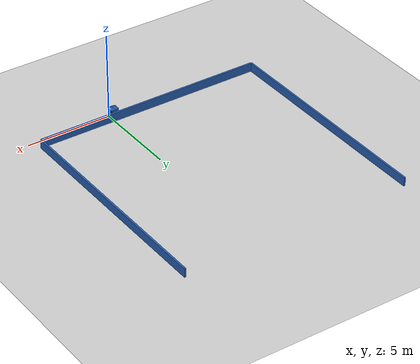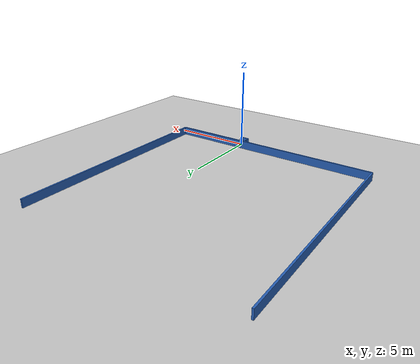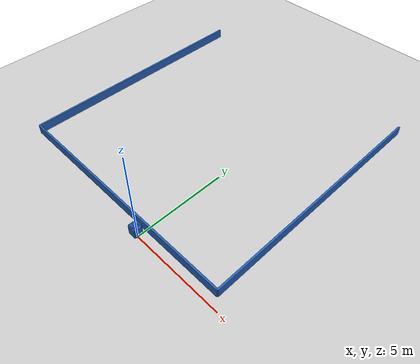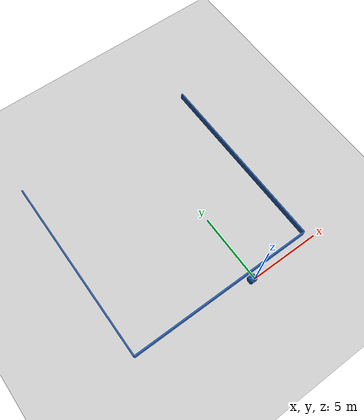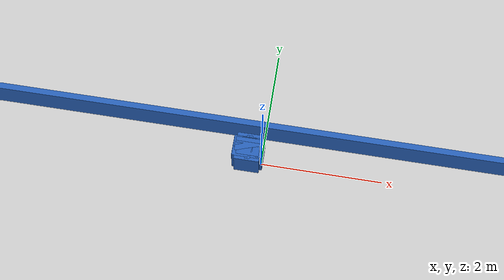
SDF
<?xml version="1.0" ?>
    <sdf version="1.5">
      <world name="default">
        <!-- A global light source -->
        <include>
          <uri>model://sun</uri>
        </include>
        <!-- A ground plane -->
        <include>
          <uri>model://ground_plane</uri>
        </include>

    <model name='libopen_space_final_T2B_115_16'>
      <static>1</static>
      <pose frame=''>-0.225000 0.075000 0.000000 0.000000 0.000000 0.000000</pose>
      <link name='link'>
        <inertial>
          <mass>1</mass>
          <inertia>
            <ixx>0.145833</ixx>
            <ixy>0</ixy>
            <ixz>0</ixz>
            <iyy>0.145833</iyy>
            <iyz>0</iyz>
            <izz>0.125</izz>
          </inertia>
        </inertial>
        <collision name='collision'>
          <geometry>
            <box>
              <size>0.50 0.34 1</size>
            </box>
          </geometry>
          <max_contacts>10</max_contacts>
          <surface>
            <contact>
              <ode/>
            </contact>
            <bounce/>
            <friction>
              <torsional>
                <ode/>
              </torsional>
              <ode/>
            </friction>
          </surface>
        </collision>
        <visual name='visual'>
          <geometry>
            <box>
              <size>0.50 0.34 1</size>
            </box>
          </geometry>
	    <material>
              <ambient>0.152000 0.379000 0.720000 1</ambient>
	      <diffuse>0.152000 0.379000 0.720000 1</diffuse>
          </material>
          <material>
            <script>
              <name>Gazebo/Grey</name>
              <uri>file://media/materials/scripts/gazebo.material</uri>
            </script>
          </material>
        </visual>
        <self_collide>0</self_collide>
        <kinematic>0</kinematic>
        <gravity>1</gravity>
      </link>
      <plugin name='libopen_space_final_T2B_115_16' filename='libopen_space_final_T2B_115_16.so'/>
    </model>

    <model name='libopen_space_final_T2B_109_60'>
      <static>1</static>
      <pose frame=''>-0.225000 0.075000 0.000000 0.000000 0.000000 0.000000</pose>
      <link name='link'>
        <inertial>
          <mass>1</mass>
          <inertia>
            <ixx>0.145833</ixx>
            <ixy>0</ixy>
            <ixz>0</ixz>
            <iyy>0.145833</iyy>
            <iyz>0</iyz>
            <izz>0.125</izz>
          </inertia>
        </inertial>
        <collision name='collision'>
          <geometry>
            <box>
              <size>0.49 0.35 1</size>
            </box>
          </geometry>
          <max_contacts>10</max_contacts>
          <surface>
            <contact>
              <ode/>
            </contact>
            <bounce/>
            <friction>
              <torsional>
                <ode/>
              </torsional>
              <ode/>
            </friction>
          </surface>
        </collision>
        <visual name='visual'>
          <geometry>
            <box>
              <size>0.49 0.35 1</size>
            </box>
          </geometry>
	    <material>
              <ambient>0.152000 0.379000 0.720000 1</ambient>
	      <diffuse>0.152000 0.379000 0.720000 1</diffuse>
          </material>
          <material>
            <script>
              <name>Gazebo/Grey</name>
              <uri>file://media/materials/scripts/gazebo.material</uri>
            </script>
          </material>
        </visual>
        <self_collide>0</self_collide>
        <kinematic>0</kinematic>
        <gravity>1</gravity>
      </link>
      <plugin name='libopen_space_final_T2B_109_60' filename='libopen_space_final_T2B_109_60.so'/>
    </model>

    <model name='libopen_space_final_T2B_129_11'>
      <static>1</static>
      <pose frame=''>-0.225000 0.075000 0.000000 0.000000 0.000000 0.000000</pose>
      <link name='link'>
        <inertial>
          <mass>1</mass>
          <inertia>
            <ixx>0.145833</ixx>
            <ixy>0</ixy>
            <ixz>0</ixz>
            <iyy>0.145833</iyy>
            <iyz>0</iyz>
            <izz>0.125</izz>
          </inertia>
        </inertial>
        <collision name='collision'>
          <geometry>
            <box>
              <size>0.41 0.46 1</size>
            </box>
          </geometry>
          <max_contacts>10</max_contacts>
          <surface>
            <contact>
              <ode/>
            </contact>
            <bounce/>
            <friction>
              <torsional>
                <ode/>
              </torsional>
              <ode/>
            </friction>
          </surface>
        </collision>
        <visual name='visual'>
          <geometry>
            <box>
              <size>0.41 0.46 1</size>
            </box>
          </geometry>
	    <material>
              <ambient>0.152000 0.379000 0.720000 1</ambient>
	      <diffuse>0.152000 0.379000 0.720000 1</diffuse>
          </material>
          <material>
            <script>
              <name>Gazebo/Grey</name>
              <uri>file://media/materials/scripts/gazebo.material</uri>
            </script>
          </material>
        </visual>
        <self_collide>0</self_collide>
        <kinematic>0</kinematic>
        <gravity>1</gravity>
      </link>
      <plugin name='libopen_space_final_T2B_129_11' filename='libopen_space_final_T2B_129_11.so'/>
    </model>

    <model name='libopen_space_final_T2B_77_58'>
      <static>1</static>
      <pose frame=''>-0.225000 0.075000 0.000000 0.000000 0.000000 0.000000</pose>
      <link name='link'>
        <inertial>
          <mass>1</mass>
          <inertia>
            <ixx>0.145833</ixx>
            <ixy>0</ixy>
            <ixz>0</ixz>
            <iyy>0.145833</iyy>
            <iyz>0</iyz>
            <izz>0.125</izz>
          </inertia>
        </inertial>
        <collision name='collision'>
          <geometry>
            <box>
              <size>0.14 0.16 1</size>
            </box>
          </geometry>
          <max_contacts>10</max_contacts>
          <surface>
            <contact>
              <ode/>
            </contact>
            <bounce/>
            <friction>
              <torsional>
                <ode/>
              </torsional>
              <ode/>
            </friction>
          </surface>
        </collision>
        <visual name='visual'>
          <geometry>
            <box>
              <size>0.14 0.16 1</size>
            </box>
          </geometry>
	    <material>
              <ambient>0.152000 0.379000 0.720000 1</ambient>
	      <diffuse>0.152000 0.379000 0.720000 1</diffuse>
          </material>
          <material>
            <script>
              <name>Gazebo/Grey</name>
              <uri>file://media/materials/scripts/gazebo.material</uri>
            </script>
          </material>
        </visual>
        <self_collide>0</self_collide>
        <kinematic>0</kinematic>
        <gravity>1</gravity>
      </link>
      <plugin name='libopen_space_final_T2B_77_58' filename='libopen_space_final_T2B_77_58.so'/>
    </model>

    <model name='libopen_space_final_T2B_77_65'>
      <static>1</static>
      <pose frame=''>-0.225000 0.075000 0.000000 0.000000 0.000000 0.000000</pose>
      <link name='link'>
        <inertial>
          <mass>1</mass>
          <inertia>
            <ixx>0.145833</ixx>
            <ixy>0</ixy>
            <ixz>0</ixz>
            <iyy>0.145833</iyy>
            <iyz>0</iyz>
            <izz>0.125</izz>
          </inertia>
        </inertial>
        <collision name='collision'>
          <geometry>
            <box>
              <size>0.37 0.28 1</size>
            </box>
          </geometry>
          <max_contacts>10</max_contacts>
          <surface>
            <contact>
              <ode/>
            </contact>
            <bounce/>
            <friction>
              <torsional>
                <ode/>
              </torsional>
              <ode/>
            </friction>
          </surface>
        </collision>
        <visual name='visual'>
          <geometry>
            <box>
              <size>0.37 0.28 1</size>
            </box>
          </geometry>
	    <material>
              <ambient>0.152000 0.379000 0.720000 1</ambient>
	      <diffuse>0.152000 0.379000 0.720000 1</diffuse>
          </material>
          <material>
            <script>
              <name>Gazebo/Grey</name>
              <uri>file://media/materials/scripts/gazebo.material</uri>
            </script>
          </material>
        </visual>
        <self_collide>0</self_collide>
        <kinematic>0</kinematic>
        <gravity>1</gravity>
      </link>
      <plugin name='libopen_space_final_T2B_77_65' filename='libopen_space_final_T2B_77_65.so'/>
    </model>

    <model name='libopen_space_final_T2B_96_0'>
      <static>1</static>
      <pose frame=''>-0.225000 0.075000 0.000000 0.000000 0.000000 0.000000</pose>
      <link name='link'>
        <inertial>
          <mass>1</mass>
          <inertia>
            <ixx>0.145833</ixx>
            <ixy>0</ixy>
            <ixz>0</ixz>
            <iyy>0.145833</iyy>
            <iyz>0</iyz>
            <izz>0.125</izz>
          </inertia>
        </inertial>
        <collision name='collision'>
          <geometry>
            <box>
              <size>0.43 0.31 1</size>
            </box>
          </geometry>
          <max_contacts>10</max_contacts>
          <surface>
            <contact>
              <ode/>
            </contact>
            <bounce/>
            <friction>
              <torsional>
                <ode/>
              </torsional>
              <ode/>
            </friction>
          </surface>
        </collision>
        <visual name='visual'>
          <geometry>
            <box>
              <size>0.43 0.31 1</size>
            </box>
          </geometry>
	    <material>
              <ambient>0.152000 0.379000 0.720000 1</ambient>
	      <diffuse>0.152000 0.379000 0.720000 1</diffuse>
          </material>
          <material>
            <script>
              <name>Gazebo/Grey</name>
              <uri>file://media/materials/scripts/gazebo.material</uri>
            </script>
          </material>
        </visual>
        <self_collide>0</self_collide>
        <kinematic>0</kinematic>
        <gravity>1</gravity>
      </link>
      <plugin name='libopen_space_final_T2B_96_0' filename='libopen_space_final_T2B_96_0.so'/>
    </model>

    <model name='libopen_space_final_T2B_122_30'>
      <static>1</static>
      <pose frame=''>-0.225000 0.075000 0.000000 0.000000 0.000000 0.000000</pose>
      <link name='link'>
        <inertial>
          <mass>1</mass>
          <inertia>
            <ixx>0.145833</ixx>
            <ixy>0</ixy>
            <ixz>0</ixz>
            <iyy>0.145833</iyy>
            <iyz>0</iyz>
            <izz>0.125</izz>
          </inertia>
        </inertial>
        <collision name='collision'>
          <geometry>
            <box>
              <size>0.10 0.40 1</size>
            </box>
          </geometry>
          <max_contacts>10</max_contacts>
          <surface>
            <contact>
              <ode/>
            </contact>
            <bounce/>
            <friction>
              <torsional>
                <ode/>
              </torsional>
              <ode/>
            </friction>
          </surface>
        </collision>
        <visual name='visual'>
          <geometry>
            <box>
              <size>0.10 0.40 1</size>
            </box>
          </geometry>
	    <material>
              <ambient>0.152000 0.379000 0.720000 1</ambient>
	      <diffuse>0.152000 0.379000 0.720000 1</diffuse>
          </material>
          <material>
            <script>
              <name>Gazebo/Grey</name>
              <uri>file://media/materials/scripts/gazebo.material</uri>
            </script>
          </material>
        </visual>
        <self_collide>0</self_collide>
        <kinematic>0</kinematic>
        <gravity>1</gravity>
      </link>
      <plugin name='libopen_space_final_T2B_122_30' filename='libopen_space_final_T2B_122_30.so'/>
    </model>

    <model name='libopen_space_final_T2B_73_9'>
      <static>1</static>
      <pose frame=''>-0.225000 0.075000 0.000000 0.000000 0.000000 0.000000</pose>
      <link name='link'>
        <inertial>
          <mass>1</mass>
          <inertia>
            <ixx>0.145833</ixx>
            <ixy>0</ixy>
            <ixz>0</ixz>
            <iyy>0.145833</iyy>
            <iyz>0</iyz>
            <izz>0.125</izz>
          </inertia>
        </inertial>
        <collision name='collision'>
          <geometry>
            <box>
              <size>0.44 0.17 1</size>
            </box>
          </geometry>
          <max_contacts>10</max_contacts>
          <surface>
            <contact>
              <ode/>
            </contact>
            <bounce/>
            <friction>
              <torsional>
                <ode/>
              </torsional>
              <ode/>
            </friction>
          </surface>
        </collision>
        <visual name='visual'>
          <geometry>
            <box>
              <size>0.44 0.17 1</size>
            </box>
          </geometry>
	    <material>
              <ambient>0.152000 0.379000 0.720000 1</ambient>
	      <diffuse>0.152000 0.379000 0.720000 1</diffuse>
          </material>
          <material>
            <script>
              <name>Gazebo/Grey</name>
              <uri>file://media/materials/scripts/gazebo.material</uri>
            </script>
          </material>
        </visual>
        <self_collide>0</self_collide>
        <kinematic>0</kinematic>
        <gravity>1</gravity>
      </link>
      <plugin name='libopen_space_final_T2B_73_9' filename='libopen_space_final_T2B_73_9.so'/>
    </model>

    <model name='libopen_space_final_T2B_119_97'>
      <static>1</static>
      <pose frame=''>-0.225000 0.075000 0.000000 0.000000 0.000000 0.000000</pose>
      <link name='link'>
        <inertial>
          <mass>1</mass>
          <inertia>
            <ixx>0.145833</ixx>
            <ixy>0</ixy>
            <ixz>0</ixz>
            <iyy>0.145833</iyy>
            <iyz>0</iyz>
            <izz>0.125</izz>
          </inertia>
        </inertial>
        <collision name='collision'>
          <geometry>
            <box>
              <size>0.45 0.11 1</size>
            </box>
          </geometry>
          <max_contacts>10</max_contacts>
          <surface>
            <contact>
              <ode/>
            </contact>
            <bounce/>
            <friction>
              <torsional>
                <ode/>
              </torsional>
              <ode/>
            </friction>
          </surface>
        </collision>
        <visual name='visual'>
          <geometry>
            <box>
              <size>0.45 0.11 1</size>
            </box>
          </geometry>
	    <material>
              <ambient>0.152000 0.379000 0.720000 1</ambient>
	      <diffuse>0.152000 0.379000 0.720000 1</diffuse>
          </material>
          <material>
            <script>
              <name>Gazebo/Grey</name>
              <uri>file://media/materials/scripts/gazebo.material</uri>
            </script>
          </material>
        </visual>
        <self_collide>0</self_collide>
        <kinematic>0</kinematic>
        <gravity>1</gravity>
      </link>
      <plugin name='libopen_space_final_T2B_119_97' filename='libopen_space_final_T2B_119_97.so'/>
    </model>

    <model name='libopen_space_final_T2B_83_23'>
      <static>1</static>
      <pose frame=''>-0.225000 0.075000 0.000000 0.000000 0.000000 0.000000</pose>
      <link name='link'>
        <inertial>
          <mass>1</mass>
          <inertia>
            <ixx>0.145833</ixx>
            <ixy>0</ixy>
            <ixz>0</ixz>
            <iyy>0.145833</iyy>
            <iyz>0</iyz>
            <izz>0.125</izz>
          </inertia>
        </inertial>
        <collision name='collision'>
          <geometry>
            <box>
              <size>0.23 0.33 1</size>
            </box>
          </geometry>
          <max_contacts>10</max_contacts>
          <surface>
            <contact>
              <ode/>
            </contact>
            <bounce/>
            <friction>
              <torsional>
                <ode/>
              </torsional>
              <ode/>
            </friction>
          </surface>
        </collision>
        <visual name='visual'>
          <geometry>
            <box>
              <size>0.23 0.33 1</size>
            </box>
          </geometry>
	    <material>
              <ambient>0.152000 0.379000 0.720000 1</ambient>
	      <diffuse>0.152000 0.379000 0.720000 1</diffuse>
          </material>
          <material>
            <script>
              <name>Gazebo/Grey</name>
              <uri>file://media/materials/scripts/gazebo.material</uri>
            </script>
          </material>
        </visual>
        <self_collide>0</self_collide>
        <kinematic>0</kinematic>
        <gravity>1</gravity>
      </link>
      <plugin name='libopen_space_final_T2B_83_23' filename='libopen_space_final_T2B_83_23.so'/>
    </model>

        <model name='bottom_wall'>
          <static>1</static>
          <pose frame=''>-2.25 0.5 0.000000 0.000000 0.000000 1.57079632</pose>
          <link name='link'>
            <inertial>
            <mass>1</mass>
            <inertia>
              <ixx>0.145833</ixx>
              <ixy>0</ixy>
              <ixz>0</ixz>
              <iyy>0.145833</iyy>
              <iyz>0</iyz>
              <izz>0.125</izz>
            </inertia>
            </inertial>
            <collision name='collision'>
            <geometry>
              <box>
              <size>0.1 13.5 1</size>
              </box>
            </geometry>
            <max_contacts>10</max_contacts>
            <surface>
              <contact>
              <ode/>
              </contact>
              <bounce/>
              <friction>
              <torsional>
                <ode/>
              </torsional>
              <ode/>
              </friction>
            </surface>
            </collision>
            <visual name='visual'>
            <geometry>
              <box>
              <size>0.1 13.5 1</size>
              </box>
            </geometry>
            <material>
              <ambient>0.152000 0.379000 0.720000 1</ambient>
            <diffuse>0.152000 0.379000 0.720000 1</diffuse>
            </material>
            <material>
              <script>
              <name>Gazebo/Grey</name>
              <uri>file://media/materials/scripts/gazebo.material</uri>
              </script>
            </material>
            </visual>
            <self_collide>0</self_collide>
            <kinematic>0</kinematic>
            <gravity>1</gravity>
          </link>
        </model>

        <model name='left_wall'>
          <static>1</static>
          <pose frame=''>-9 7.25 0.000000 0.000000 0.000000 0.000000</pose>
          <link name='link'>
            <inertial>
            <mass>1</mass>
            <inertia>
              <ixx>0.145833</ixx>
              <ixy>0</ixy>
              <ixz>0</ixz>
              <iyy>0.145833</iyy>
              <iyz>0</iyz>
              <izz>0.125</izz>
            </inertia>
            </inertial>
            <collision name='collision'>
            <geometry>
              <box>
              <size>0.1 13.5 1</size>
              </box>
            </geometry>
            <max_contacts>10</max_contacts>
            <surface>
              <contact>
              <ode/>
              </contact>
              <bounce/>
              <friction>
              <torsional>
                <ode/>
              </torsional>
              <ode/>
              </friction>
            </surface>
            </collision>
            <visual name='visual'>
            <geometry>
              <box>
              <size>0.1 13.5 1</size>
              </box>
            </geometry>
            <material>
              <ambient>0.152000 0.379000 0.720000 1</ambient>
            <diffuse>0.152000 0.379000 0.720000 1</diffuse>
            </material>
            <material>
              <script>
              <name>Gazebo/Grey</name>
              <uri>file://media/materials/scripts/gazebo.material</uri>
              </script>
            </material>
            </visual>
            <self_collide>0</self_collide>
            <kinematic>0</kinematic>
            <gravity>1</gravity>
          </link>
        </model>

        <model name='right_wall'>
          <static>1</static>
          <pose frame=''>4.5 7.25 0.000000 0.000000 0.000000 0.000000</pose>
          <link name='link'>
            <inertial>
            <mass>1</mass>
            <inertia>
              <ixx>0.145833</ixx>
              <ixy>0</ixy>
              <ixz>0</ixz>
              <iyy>0.145833</iyy>
              <iyz>0</iyz>
              <izz>0.125</izz>
            </inertia>
            </inertial>
            <collision name='collision'>
            <geometry>
              <box>
              <size>0.1 13.5 1</size>
              </box>
            </geometry>
            <max_contacts>10</max_contacts>
            <surface>
              <contact>
              <ode/>
              </contact>
              <bounce/>
              <friction>
              <torsional>
                <ode/>
              </torsional>
              <ode/>
              </friction>
            </surface>
            </collision>
            <visual name='visual'>
            <geometry>
              <box>
              <size>0.1 13.5 1</size>
              </box>
            </geometry>
            <material>
              <ambient>0.152000 0.379000 0.720000 1</ambient>
            <diffuse>0.152000 0.379000 0.720000 1</diffuse>
            </material>
            <material>
              <script>
              <name>Gazebo/Grey</name>
              <uri>file://media/materials/scripts/gazebo.material</uri>
              </script>
            </material>
            </visual>
            <self_collide>0</self_collide>
            <kinematic>0</kinematic>
            <gravity>1</gravity>
          </link>
        </model>

      </world>
    </sdf>"
